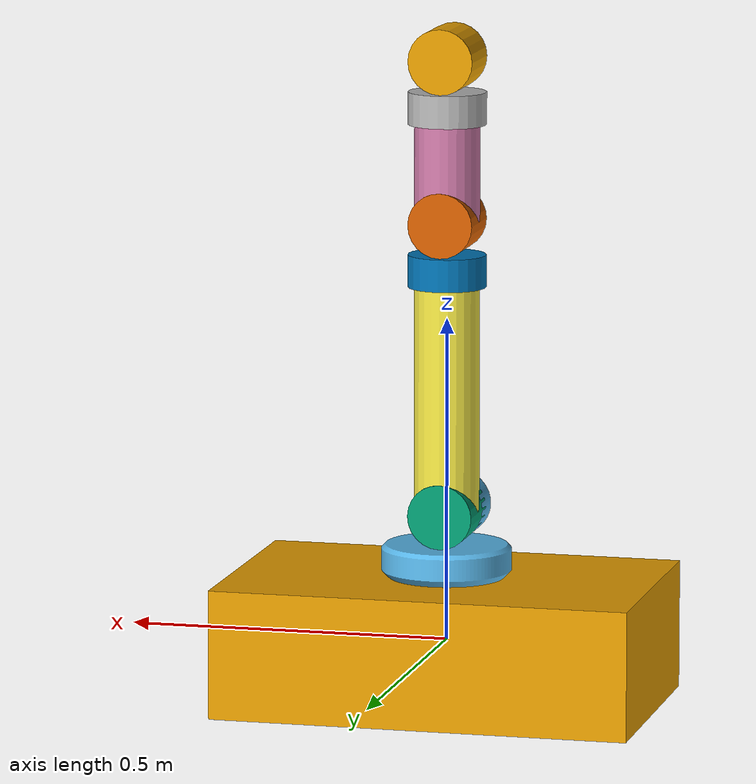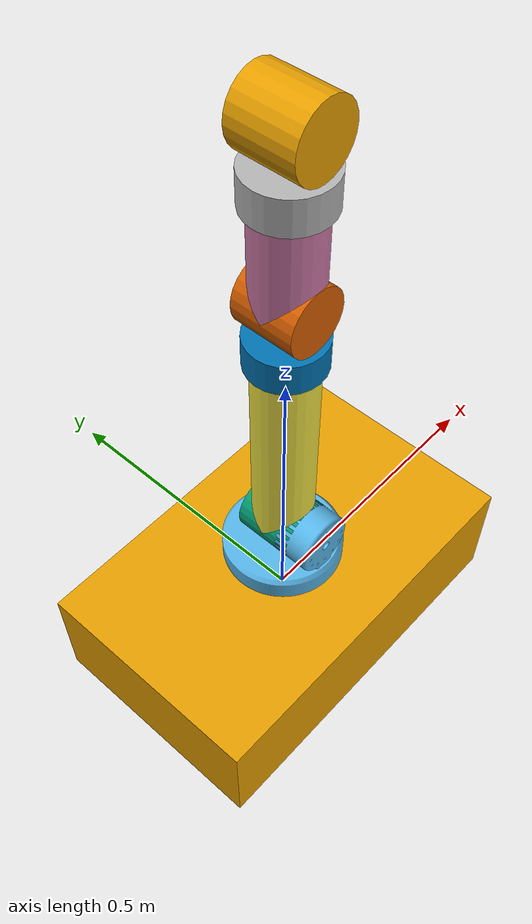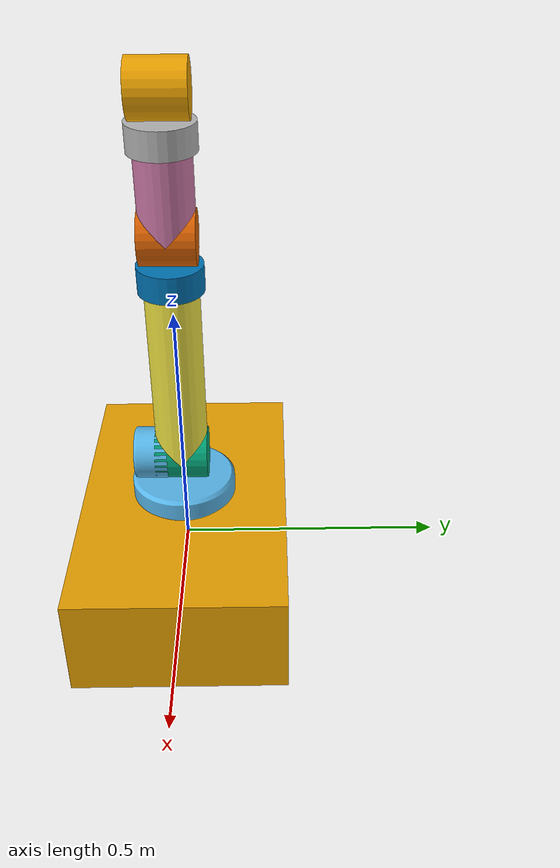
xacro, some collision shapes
<?xml version='1.0'?>

<robot name="trash_arm" xmlns:xacro="http://www.ros.org/wiki/xacro">
  <xacro:include filename="$(find semesterprosjekt)/urdf/common_macros.xacro" />
  <xacro:include filename="$(find semesterprosjekt)/urdf/trash_arm.urdf.gazebo" />

  <gazebo>
    <static>true</static>
  </gazebo>

  <!-- MOBILE BASE -->
  <!--Base må byttast ut til den respektiv basen armen skal festast til!!!-->
  <xacro:link_box link_name="mobile_body_link" length="0.65" width="0.4" height="0.2" mesh_name="package://semesterprosjekt/mesh/base_mesh.stl">
    <!-- origin visual -->
    <origin xyz="0 0 0" rpy="0 0 0"/>
    <!-- origin collision -->
    <origin xyz="0 0 0" rpy="0 0 0"/>
    <!-- origin interia -->
    <origin xyz="0 0 0" rpy="0 0 0"/>
  </xacro:link_box>

  <!-- ROBOTIC ARM -->

  <!-- ARM BASE -->
  <joint type="revolute" name="arm_base_joint">
    <origin xyz="0 0 0.10" rpy="0 0 0"/>
    <child link="arm_base_link"/>
    <parent link="mobile_body_link"/>
    <axis xyz="0 0 1" rpy="0 0 0"/>
    <limit effort="100" velocity="100" lower="-${pi}" upper="${pi}"/>
  </joint>

  <xacro:link_cylinder link_name="arm_base_link" radius="${0.20/2}" length="0.10" density="1" mesh_name="package://semesterprosjekt/mesh/Trash_Arm_F1_Fixed04.stl">
    <!-- origin visual -->
    <origin xyz="0 0 0" rpy="0 0 ${pi/2}"/>
    <!-- origin collision -->
    <origin xyz="0 0 0" rpy="0 0 0"/>
    <!-- origin interia -->
    <origin xyz="0 0 0" rpy="0 0 0"/>
  </xacro:link_cylinder>

  <!-- LINK 1 -->
  <joint type="revolute" name="link_1_joint">
    <origin xyz="0 0 0.10" rpy="-${pi/2} 0 0"/>
    <child link="link_1_link"/>
    <parent link="arm_base_link"/>
    <axis xyz="0 0 1" rpy="0 0 0"/>
    <limit effort="100" velocity="100" lower="-${pi}" upper="${pi}"/>
  </joint>

  <xacro:link_cylinder link_name="link_1_link" radius="${0.10/2}" length="0.10" density="1" >
    <!-- origin visual -->
    <origin xyz="0 0 0" rpy="-${pi} 0 0"/>
    <!-- origin collision -->
    <origin xyz="0 0 0" rpy="0 0 0"/>
    <!-- origin interia -->
    <origin xyz="0 0 0" rpy="0 0 0"/>
  </xacro:link_cylinder>

  <!-- LINK 2 -->
  <joint type="revolute" name="link_2_joint">
    <origin xyz="0 -${0.35/2} 0" rpy="${pi/2} 0 0"/>
    <child link="link_2_link"/>
    <parent link="link_1_link"/>
    <axis xyz="0 0 1" rpy="0 0 0"/>
    <limit effort="100" velocity="100" lower="-${pi/2}" upper="${pi/2}"/>
  </joint>

  <xacro:link_cylinder link_name="link_2_link" radius="${0.10/2}" length="0.35" density="1" mesh_name="package://semesterprosjekt/mesh/Trash_Arm_F2.stl">
    <!-- origin visual -->
    <origin xyz="0 0 0" rpy="${pi/2} 0 0 "/>
    <!-- origin collision -->
    <origin xyz="0 0 0" rpy="0 0 0"/>
    <!-- origin interia -->
    <origin xyz="0 0 0" rpy="0 0 0"/>
  </xacro:link_cylinder>

  <!-- LINK 3 -->
  <joint type="revolute" name="link_3_joint">
    <origin xyz="0 0 ${0.35/2}" rpy="0 0 0"/>
    <child link="link_3_link"/>
    <parent link="link_2_link"/>
    <axis xyz="0 0 1" rpy="0 0 0"/>
    <limit effort="100" velocity="100" lower="-${pi/2}" upper="${pi/2}"/>
  </joint>

  <xacro:link_cylinder link_name="link_3_link" radius="${0.12/2}" length="0.05" density="1" >
    <!-- origin visual -->
    <origin xyz="0 0 ${0.05/2}" rpy="0 0 0"/>
    <!-- origin collision -->
    <origin xyz="0 0 ${0.05/2}" rpy="0 0 0"/>
    <!-- origin interia -->
    <origin xyz="0 0 ${0.05/2}" rpy="0 0 0"/>
  </xacro:link_cylinder>

  <!-- LINK 4 -->
  <joint type="revolute" name="link_4_joint">
    <origin xyz="0 0 ${0.10}" rpy="-${pi/2} 0 0"/>
    <child link="link_4_link"/>
    <parent link="link_3_link"/>
    <axis xyz="0 0 1" rpy="0 0 0"/>
    <limit effort="100" velocity="100" lower="-${pi}" upper="${pi}"/>
  </joint>

  <xacro:link_cylinder link_name="link_4_link" radius="${0.10/2}" length="0.10" density="1" >
    <!-- origin visual -->
    <origin xyz="0 0 0" rpy="0 0 0"/>
    <!-- origin collision -->
    <origin xyz="0 0 0" rpy="0 0 0"/>
    <!-- origin interia -->
    <origin xyz="0 0 0" rpy="0 0 0"/>
  </xacro:link_cylinder>

  <!-- LINK 5 -->
  <joint type="revolute" name="link_5_joint">
    <origin xyz="0 -${0.15/2} 0" rpy="${pi/2} 0 0"/>
    <child link="link_5_link"/>
    <parent link="link_4_link"/>
    <axis xyz="0 0 1" rpy="0 0 0"/>
    <limit effort="100" velocity="100" lower="-${pi/2}" upper="${pi/2}"/>
  </joint>

  <xacro:link_cylinder link_name="link_5_link" radius="${0.10/2}" length="0.15" density="1" >
    <!-- origin visual -->
    <origin xyz="0 0 0" rpy="0 0 0"/>
    <!-- origin collision -->
    <origin xyz="0 0 0" rpy="0 0 0"/>
    <!-- origin interia -->
    <origin xyz="0 0 0" rpy="0 0 0"/>
  </xacro:link_cylinder>

  <!-- LINK 6 -->
  <joint type="revolute" name="link_6_joint">
    <origin xyz="0 0 ${0.15/2}" rpy="0 0 0"/>
    <child link="link_6_link"/>
    <parent link="link_5_link"/>
    <axis xyz="0 0 1" rpy="0 0 0"/>
    <limit effort="100" velocity="100" lower="-${pi/2}" upper="${pi/2}"/>
  </joint>

  <xacro:link_cylinder link_name="link_6_link" radius="${0.12/2}" length="0.05" density="1" >
    <!-- origin visual -->
    <origin xyz="0 0 ${0.05/2}" rpy="0 0 0"/>
    <!-- origin collision -->
    <origin xyz="0 0 ${0.05/2}" rpy="0 0 0"/>
    <!-- origin interia -->
    <origin xyz="0 0 ${0.05/2}" rpy="0 0 0"/>
  </xacro:link_cylinder>

  <!-- LINK 7 -->
  <joint type="revolute" name="link_7_joint">
    <origin xyz="0 0 0.10" rpy="-${pi/2} 0 0"/>
    <child link="link_7_link"/>
    <parent link="link_6_link"/>
    <axis xyz="0 0 1" rpy="0 0 0"/>
    <limit effort="100" velocity="100" lower="-${pi}" upper="${pi}"/>
  </joint>

  <xacro:link_cylinder link_name="link_7_link" radius="${0.10/2}" length="0.10" density="1" >
    <!-- origin visual -->
    <origin xyz="0 0 0" rpy="0 0 0"/>
    <!-- origin collision -->
    <origin xyz="0 0 0" rpy="0 0 0"/>
    <!-- origin interia -->
    <origin xyz="0 0 0" rpy="0 0 0"/>
  </xacro:link_cylinder>

  <!-- TRANSMISSIONS -->

  <!-- TRANSMISSION ARM_BASE-->
  <transmission name="arm_base_tran">
    <type>transmission_interface/SimpleTransmission</type>
    <joint name="arm_base_joint">
      <hardwareInterface>hardware_interface/PositionJointInterface</hardwareInterface>
    </joint>
    <actuator name="arm_base_motor">
      <hardwareInterface>hardware_interface/PositionJointInterface</hardwareInterface>
      <mechanicalReduction>1</mechanicalReduction>
    </actuator>
  </transmission>

  <!-- TRANSMISSION JOINT_1-->
  <transmission name="joint_1_tran">
      <type>transmission_interface/SimpleTransmission</type>
      <joint name="link_1_joint">
       <hardwareInterface>hardware_interface/PositionJointInterface</hardwareInterface>
      </joint>
      <actuator name="joint_1_motor">
        <hardwareInterface>hardware_interface/PositionJointInterface</hardwareInterface>
        <mechanicalReduction>1</mechanicalReduction>
      </actuator>
    </transmission>

    <!-- TRANSMISSION JOINT_2-->
    <transmission name="joint_2_tran">
      <type>transmission_interface/SimpleTransmission</type>
      <joint name="link_2_joint">
        <hardwareInterface>hardware_interface/PositionJointInterface</hardwareInterface>
      </joint>
        <actuator name="joint_2_motor">
          <hardwareInterface>hardware_interface/PositionJointInterface</hardwareInterface>
          <mechanicalReduction>1</mechanicalReduction>
        </actuator>
      </transmission>

    <!-- TRANSMISSION JOINT_3-->
    <transmission name="joint_3_tran">
      <type>transmission_interface/SimpleTransmission</type>
      <joint name="link_3_joint">
        <hardwareInterface>hardware_interface/PositionJointInterface</hardwareInterface>
      </joint>
      <actuator name="joint_3_motor">
        <hardwareInterface>hardware_interface/PositionJointInterface</hardwareInterface>
        <mechanicalReduction>1</mechanicalReduction>
      </actuator>
    </transmission>

    <!-- TRANSMISSION JOINT_4-->
    <transmission name="joint_4_tran">
      <type>transmission_interface/SimpleTransmission</type>
      <joint name="link_4_joint">
        <hardwareInterface>hardware_interface/PositionJointInterface</hardwareInterface>
      </joint>
      <actuator name="joint_4_motor">
        <hardwareInterface>hardware_interface/PositionJointInterface</hardwareInterface>
        <mechanicalReduction>1</mechanicalReduction>
      </actuator>
    </transmission>

    <!-- TRANSMISSION JOINT_5-->
    <transmission name="joint_5_tran">
      <type>transmission_interface/SimpleTransmission</type>
      <joint name="link_5_joint">
        <hardwareInterface>hardware_interface/PositionJointInterface</hardwareInterface>
      </joint>
      <actuator name="joint_5_motor">
        <hardwareInterface>hardware_interface/PositionJointInterface</hardwareInterface>
        <mechanicalReduction>1</mechanicalReduction>
      </actuator>
    </transmission>

    <!-- TRANSMISSION JOINT_6-->
    <transmission name="joint_6_tran">
      <type>transmission_interface/SimpleTransmission</type>
      <joint name="link_6_joint">
        <hardwareInterface>hardware_interface/PositionJointInterface</hardwareInterface>
      </joint>
        <actuator name="joint_6_motor">
          <hardwareInterface>hardware_interface/PositionJointInterface</hardwareInterface>
          <mechanicalReduction>1</mechanicalReduction>
      </actuator>
    </transmission>

    <!-- TRANSMISSION JOINT_7-->
    <transmission name="joint_7_tran">
      <type>transmission_interface/SimpleTransmission</type>
      <joint name="link_7_joint">
        <hardwareInterface>hardware_interface/PositionJointInterface</hardwareInterface>
      </joint>
      <actuator name="joint_7_motor">
        <hardwareInterface>hardware_interface/PositionJointInterface</hardwareInterface>
        <mechanicalReduction>1</mechanicalReduction>
      </actuator>
    </transmission>

</robot>

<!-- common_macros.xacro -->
<robot name="xacro_macros" xmlns:xacro="http://ros.org/wiki/xacro">

  <xacro:macro name="link_box" params="link_name length width height density:=1 mesh_name:='nofile' *origin_vis *origin_col *origin_inertial">
    <xacro:property name="mass" value="${length*height*width*density}" />
    <link name="${link_name}">
      <visual>
        <xacro:insert_block name="origin_vis" />
        <geometry>
          <xacro:if value="${mesh_name == 'nofile'}">
            <box size="${length} ${width} ${height}"/>
          </xacro:if>
          <xacro:unless value="${mesh_name == 'nofile'}">
            <mesh filename="${mesh_name}" scale="0.001 0.001 0.001" />
          </xacro:unless>
        </geometry>
      </visual>
      <collision>
        <xacro:insert_block name="origin_col" />
        <geometry>
          <box size="${length} ${width} ${height}"/>
        </geometry>
      </collision>
      <inertial>
        <xacro:insert_block name="origin_inertial" />
        <mass value="${mass}"/>
        <inertia
          ixx="${mass*(pow(height,2) + pow(width,2))/12}" ixy="0.0" ixz="0.0"
          iyy="${mass*(pow(length,2) + pow(height,2))/12}" iyz="0.0"
          izz="${mass*(pow(length,2) + pow(width,2))/12}"/>
      </inertial>
    </link>
  </xacro:macro>

  <xacro:macro name="link_cylinder" params="link_name radius length density:=1 mesh_name:='nofile' *origin_vis *origin_col *origin_inertial">
    <xacro:property name="mass" value="${pi*length*pow(radius,2)*density}" />
    <link name="${link_name}">
      <visual>
        <xacro:insert_block name="origin_vis" />
        <geometry>
          <xacro:if value="${mesh_name == 'nofile'}">
            <cylinder length="${length}" radius="${radius}"/>
          </xacro:if>
          <xacro:unless value="${mesh_name == 'nofile'}">
            <mesh filename="${mesh_name}" scale="0.001 0.001 0.001" />
          </xacro:unless>
        </geometry>
      </visual>
      <collision>
        <xacro:insert_block name="origin_col" />
        <geometry>
          <cylinder length="${length}" radius="${radius}"/>
        </geometry>
      </collision>
      <inertial>
        <xacro:insert_block name="origin_inertial" />
        <mass value="${mass}"/>
        <inertia
          ixx="${mass*(3*pow(radius,2)+pow(length,2))/12}" ixy="0.0" ixz="0.0"
          iyy="${mass*(3*pow(radius,2)+pow(length,2))/12}" iyz="0.0"
          izz="${mass*pow(radius,2)/2}"/>
      </inertial>
    </link>
  </xacro:macro>

  <xacro:macro name="link_sphere" params="link_name radius density:=1 mesh_name:='nofile' *origin_vis *origin_col *origin_inertial">
    <xacro:property name="mass" value="${(4/3)*pi*pow(radius,3)}" />
    <link name="${link_name}">
      <visual>
        <xacro:insert_block name="origin_vis" />
        <geometry>
          <xacro:if value="${mesh_name == 'nofile'}">
            <sphere radius="${radius}"/>
          </xacro:if>
          <xacro:unless value="${mesh_name == 'nofile'}">
            <mesh filename="${mesh_name}" />
          </xacro:unless>
        </geometry>
      </visual>
      <collision>
        <xacro:insert_block name="origin_col" />
        <geometry>
          <sphere radius="${radius}"/>
        </geometry>
      </collision>
      <inertial>
        <xacro:insert_block name="origin_inertial" />
        <mass value="${mass}"/>
        <inertia
          ixx="${2*mass*pow(radius,2)/5}" ixy="0.0" ixz="0.0"
          iyy="${2*mass*pow(radius,2)/5}" iyz="0.0"
          izz="${2*mass*pow(radius,2)/5}"/>
      </inertial>
    </link>
  </xacro:macro>

  <xacro:macro name="link_wheel" params="link_name length:=0.05 radius:=0.10 density:=15 *origin_col *origin_inertial">
    <xacro:property name="mass" value="${pi*length*pow(radius,2)*density}" />
    <link name="${link_name}">
      <collision>
        <xacro:insert_block name="origin_col" />
        <geometry>
          <cylinder length="${length}" radius="${radius}"/>
        </geometry>
      </collision>
      <inertial>
        <xacro:insert_block name="origin_inertial" />
        <mass value="${mass}"/>
        <inertia
          ixx="${mass*(3*pow(radius,2)+pow(length,2))/12}" ixy="0.0" ixz="0.0"
          iyy="${mass*(3*pow(radius,2)+pow(length,2))/12}" iyz="0.0"
          izz="${mass*pow(radius,2)/2}"/>
      </inertial>
    </link>
  </xacro:macro>

</robot>
